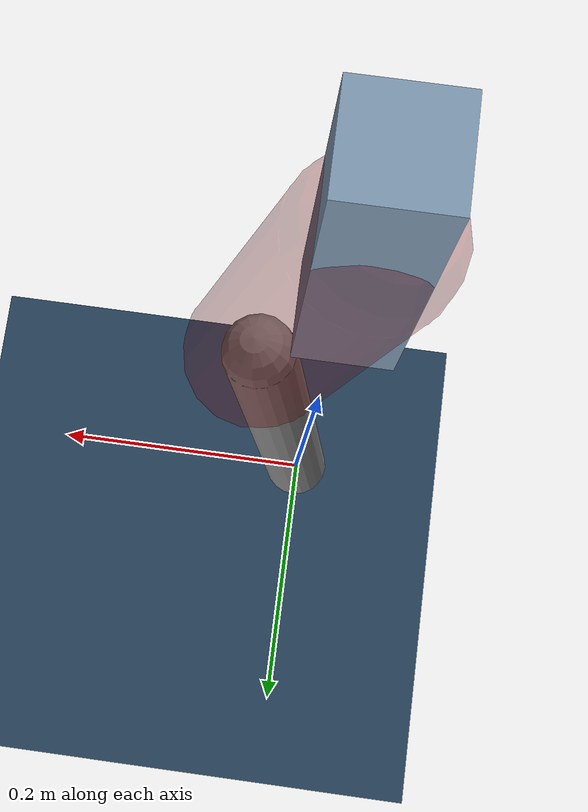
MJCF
<mujoco model="Hopper2D">
	<compiler inertiafromgeom="true" angle="radian" />
	<option timestep="0.001" integrator="implicit" cone="elliptic" solver="Newton" tolerance="1e-10" />

	<default>
		<geom contype="1" conaffinity="1" condim="3" friction="2 0.005 0.0001" solref="0.005 1" />
		<joint limited="true" damping="0.1" />
	</default>

	<asset>
		<texture name="skybox" type="skybox" builtin="gradient" rgb1=".4 .6 .8" rgb2="0 0 0" width="800" height="800" />
		<texture name="grid" type="2d" builtin="checker" rgb1=".1 .2 .3" rgb2=".2 .3 .4" width="300" height="300" mark="edge" markrgb=".2 .3 .4" />
		<material name="ground" texture="grid" texrepeat="1 1" texuniform="true" reflectance="0.1" />
		<material name="leg" rgba="0.5 0.6 0.7 1" />
	</asset>

	<worldbody>

		<geom name="floor" type="plane" size="5 5 0.25" material="ground" />

		<light directional="false" diffuse="0.8 0.8 0.8" specular="0.3 0.3 0.3" pos="0 0 2" dir="0 0 -1" />
		<light mode="targetbodycom" target="base" directional="false" diffuse="0.8 0.8 0.8" specular="0.3 0.3 0.3" pos="0 0 2" dir="0 0 -1" />

		<camera name="fixed" pos="0 -2 1" xyaxes="1 0 0 0 0 1" />
		<camera name="tracking" mode="trackcom" pos="0 -3 1" />

		<body name="root" pos="0 0 0.4601295273901637">
			<joint name="slide_x" type="slide" axis="1 0 0" range="-100 100" />
			<joint name="slide_z" type="slide" axis="0 0 1" range="0 10" />

			<body name="base" pos="0 0 0">
				<geom name="torso" type="box" size="0.03 0.03 0.1" mass="3.254" material="leg" />

				<body name="link1" pos="0 0 0" euler="0 1.319149238092382 0">
					<joint type="hinge" axis="0 -1 0" pos="0 0 0" name="hinge1" limited="true" range="-3.14 3.14" stiffness="0" damping="0.1" />
					<geom name="thigh" type="capsule" fromto="0 0 0 0.18990755396729325 0 0" size="0.05" rgba="0.5 0 0 0.3" mass="0.7047688849182331" />

					<body name="link2" pos="0.18990755396729325 0 0" euler="0 0.42120636677435774 0">
						<joint type="hinge" axis="0 -1 0" pos="0 0 0" name="hinge2" limited="true" range="-3.14 3.14" stiffness="0" damping="0.1" />
						<geom name="shank" type="capsule" fromto="0 0 0 0.2802219734228705 0 0" size="0.025" mass="0.46727757873829634" />

					</body>
				</body>
			</body>
		</body>
	</worldbody>

	<actuator>
		<motor name="torque1" joint="hinge1" ctrlrange="-105.86489277569895 105.86489277569895" ctrllimited="true" gear="1" />
		<motor name="torque2" joint="hinge2" ctrlrange="-186.22136642240582 186.22136642240582" ctrllimited="true" gear="1" />
	</actuator>
</mujoco>
